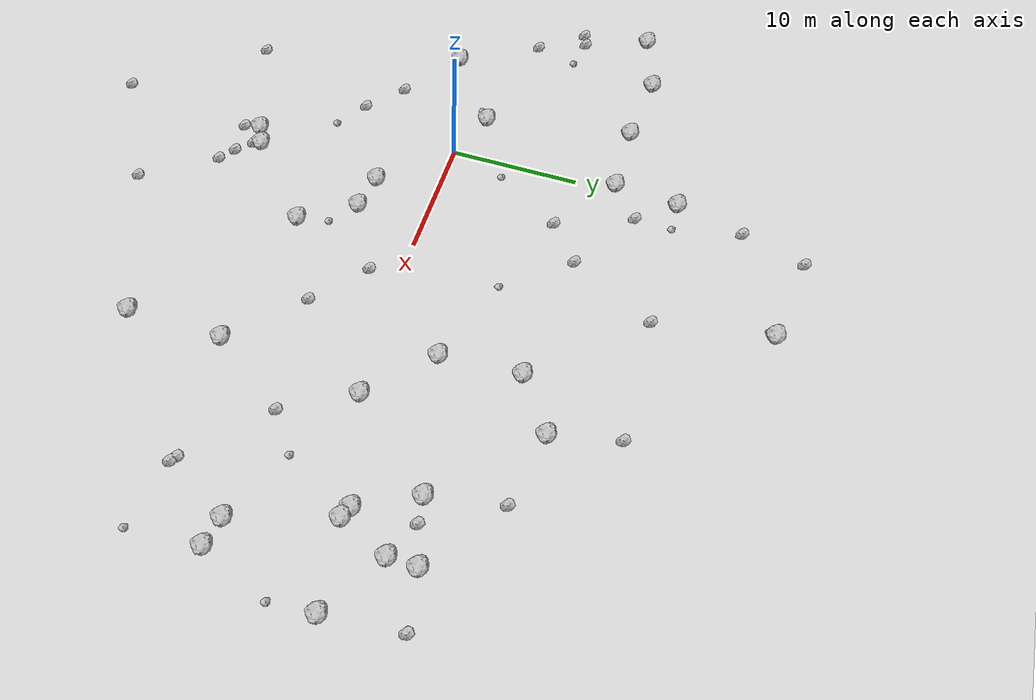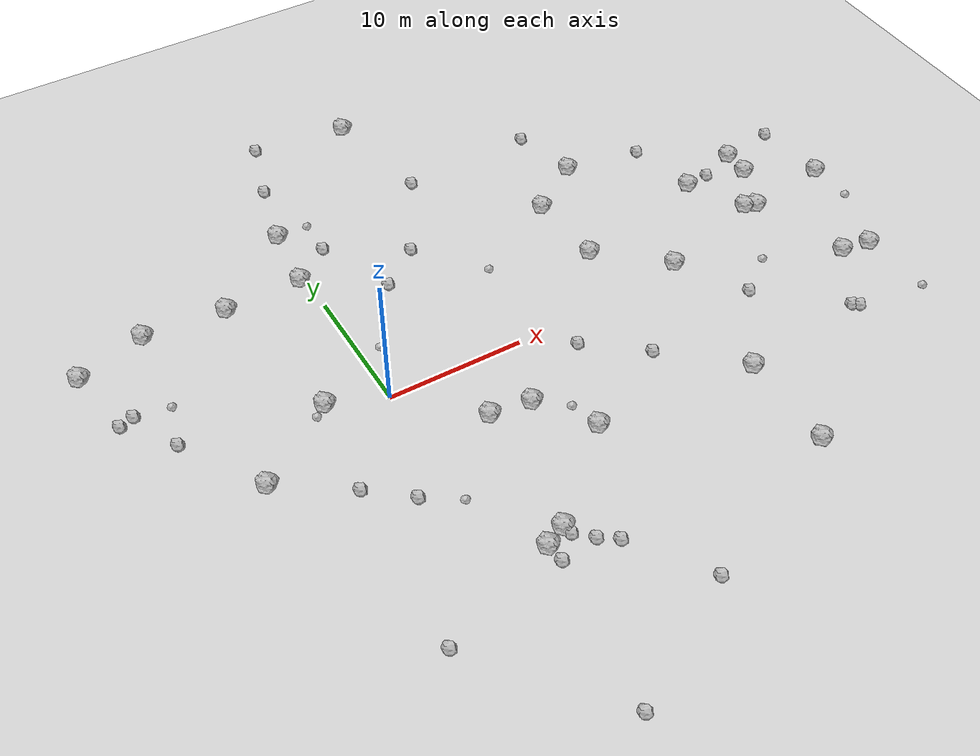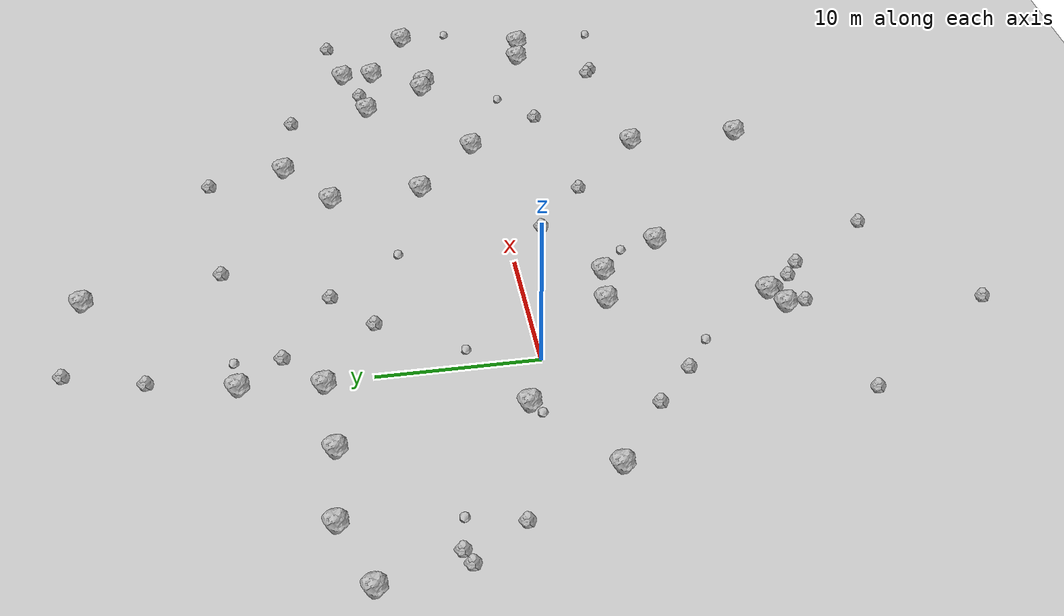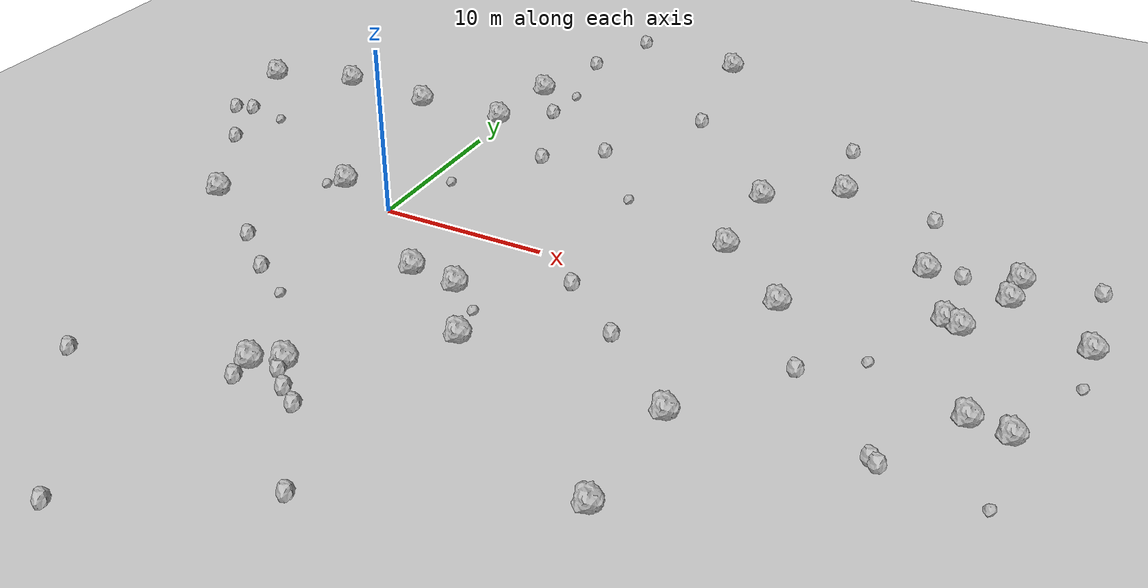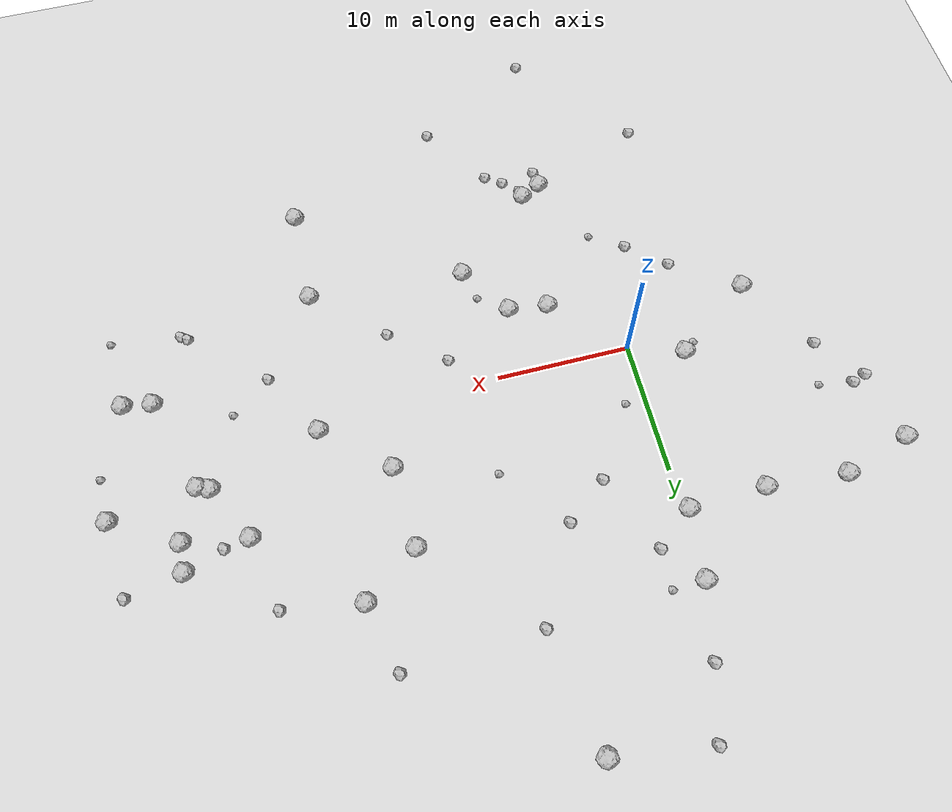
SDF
<sdf version="1.6">
 <world name="default">
  <include><uri>model://custom_ground</uri></include>
  <include><uri>model://sun</uri></include>
  <model name="rock1_0_0">
   <include><uri>model://rock1</uri><pose>39.00782874264638 4.000200810997299 0.5 0 0 0</pose></include>
  </model>
  <model name="rock1_0_1">
   <include><uri>model://rock1</uri><pose>-17.21298650060218 11.812632143164358 0.5 0 0 0</pose></include>
  </model>
  <model name="rock1_0_2">
   <include><uri>model://rock1</uri><pose>37.1797456083829 -4.508111469300815 0.5 0 0 0</pose></include>
  </model>
  <model name="rock1_0_3">
   <include><uri>model://rock1</uri><pose>-4.022800164153924 1.4226489339586799 0.5 0 0 0</pose></include>
  </model>
  <model name="rock1_0_4">
   <include><uri>model://rock1</uri><pose>22.304358731930016 -17.475497171580237 0.5 0 0 0</pose></include>
  </model>
  <model name="rock1_0_5">
   <include><uri>model://rock1</uri><pose>9.875731827637612 27.20153999997479 0.5 0 0 0</pose></include>
  </model>
  <model name="rock1_0_6">
   <include><uri>model://rock1</uri><pose>34.27448514048011 8.854126465477336 0.5 0 0 0</pose></include>
  </model>
  <model name="rock1_0_7">
   <include><uri>model://rock1</uri><pose>35.017381667392186 -4.143441351838046 0.5 0 0 0</pose></include>
  </model>
  <model name="rock1_0_8">
   <include><uri>model://rock1</uri><pose>10.542896415734589 -9.231312079236755 0.5 0 0 0</pose></include>
  </model>
  <model name="rock1_0_9">
   <include><uri>model://rock1</uri><pose>4.204335739118839 -15.002152425424516 0.5 0 0 0</pose></include>
  </model>
  <model name="rock1_0_10">
   <include><uri>model://rock1</uri><pose>-10.050826282383692 -2.8381125024878457 0.5 0 0 0</pose></include>
  </model>
  <model name="rock1_0_11">
   <include><uri>model://rock1</uri><pose>31.791769294671134 3.387831658192887 0.5 0 0 0</pose></include>
  </model>
  <model name="rock1_0_12">
   <include><uri>model://rock1</uri><pose>7.863234645827358 -5.275506037510148 0.5 0 0 0</pose></include>
  </model>
  <model name="rock1_0_13">
   <include><uri>model://rock1</uri><pose>22.695051304192916 13.903614760831758 0.5 0 0 0</pose></include>
  </model>
  <model name="rock1_0_14">
   <include><uri>model://rock1</uri><pose>32.64508349576532 3.0497121105837692 0.5 0 0 0</pose></include>
  </model>
  <model name="rock1_0_15">
   <include><uri>model://rock1</uri><pose>2.666469860374942 -15.765219007327303 0.5 0 0 0</pose></include>
  </model>
  <model name="rock1_0_16">
   <include><uri>model://rock1</uri><pose>34.23047967826186 6.734056890343247 0.5 0 0 0</pose></include>
  </model>
  <model name="rock1_0_17">
   <include><uri>model://rock1</uri><pose>18.624409449871777 11.065526506576404 0.5 0 0 0</pose></include>
  </model>
  <model name="rock1_0_18">
   <include><uri>model://rock1</uri><pose>-6.143668947695291 12.889030794224809 0.5 0 0 0</pose></include>
  </model>
  <model name="rock1_0_19">
   <include><uri>model://rock1</uri><pose>-12.124062947898448 13.38079681394953 0.5 0 0 0</pose></include>
  </model>
  <model name="rock1_0_20">
   <include><uri>model://rock1</uri><pose>-0.3942462875971451 13.051859913297271 0.5 0 0 0</pose></include>
  </model>
  <model name="rock1_0_21">
   <include><uri>model://rock1</uri><pose>0.14181704432165887 18.069167937783668 0.5 0 0 0</pose></include>
  </model>
  <model name="rock1_0_22">
   <include><uri>model://rock1</uri><pose>22.407912403471123 -10.110646810274186 0.5 0 0 0</pose></include>
  </model>
  <model name="rock1_0_23">
   <include><uri>model://rock1</uri><pose>23.627605341010188 0.8990585939026161 0.5 0 0 0</pose></include>
  </model>
  <model name="rock1_0_24">
   <include><uri>model://rock1</uri><pose>18.980194772403735 5.003210001196784 0.5 0 0 0</pose></include>
  </model>
  <model name="rock1_0_25">
   <include><uri>model://rock1</uri><pose>29.536247102335437 7.55964429712207 0.5 0 0 0</pose></include>
  </model>
  <model name="rock1_0_26">
   <include><uri>model://rock1</uri><pose>4.896204941657427 -4.8788702981881436 0.5 0 0 0</pose></include>
  </model>
  <model name="rock2_0_0">
   <include><uri>model://rock2</uri><pose>-6.009146116089564 -18.959457464373312 0.3 0 0 0</pose></include>
  </model>
  <model name="rock2_0_1">
   <include><uri>model://rock2</uri><pose>-5.241232983919504 -6.090549567524651 0.3 0 0 0</pose></include>
  </model>
  <model name="rock2_0_2">
   <include><uri>model://rock2</uri><pose>1.3119599324578743 23.377046684366114 0.3 0 0 0</pose></include>
  </model>
  <model name="rock2_0_3">
   <include><uri>model://rock2</uri><pose>31.932369752239048 -8.825399779976664 0.3 0 0 0</pose></include>
  </model>
  <model name="rock2_0_4">
   <include><uri>model://rock2</uri><pose>4.322503758589104 -15.60846851313724 0.3 0 0 0</pose></include>
  </model>
  <model name="rock2_0_5">
   <include><uri>model://rock2</uri><pose>5.462342948610612 -16.690291573524725 0.3 0 0 0</pose></include>
  </model>
  <model name="rock2_0_6">
   <include><uri>model://rock2</uri><pose>6.692051148042339 -17.5421284812003 0.3 0 0 0</pose></include>
  </model>
  <model name="rock2_0_7">
   <include><uri>model://rock2</uri><pose>1.32774126318796 -28.02670629251604 0.3 0 0 0</pose></include>
  </model>
  <model name="rock2_0_8">
   <include><uri>model://rock2</uri><pose>38.40056803908574 9.632337669620952 0.3 0 0 0</pose></include>
  </model>
  <model name="rock2_0_9">
   <include><uri>model://rock2</uri><pose>-13.703243226534301 3.1506584168229637 0.3 0 0 0</pose></include>
  </model>
  <model name="rock2_0_10">
   <include><uri>model://rock2</uri><pose>-15.312900786197837 6.8891173916460104 0.3 0 0 0</pose></include>
  </model>
  <model name="rock2_0_11">
   <include><uri>model://rock2</uri><pose>2.7634984590587344 28.26363722420605 0.3 0 0 0</pose></include>
  </model>
  <model name="rock2_0_12">
   <include><uri>model://rock2</uri><pose>28.39429345547437 12.974020109876719 0.3 0 0 0</pose></include>
  </model>
  <model name="rock2_0_13">
   <include><uri>model://rock2</uri><pose>26.549311937706804 -4.043764254899706 0.3 0 0 0</pose></include>
  </model>
  <model name="rock2_0_14">
   <include><uri>model://rock2</uri><pose>2.7702033035819404 -17.052390402370897 0.3 0 0 0</pose></include>
  </model>
  <model name="rock2_0_15">
   <include><uri>model://rock2</uri><pose>7.88554544243549 11.979606047727835 0.3 0 0 0</pose></include>
  </model>
  <model name="rock2_0_16">
   <include><uri>model://rock2</uri><pose>32.37066117506696 -9.143057063482466 0.3 0 0 0</pose></include>
  </model>
  <model name="rock2_0_17">
   <include><uri>model://rock2</uri><pose>11.432849462323013 18.56214435046342 0.3 0 0 0</pose></include>
  </model>
  <model name="rock2_0_18">
   <include><uri>model://rock2</uri><pose>21.440908723428834 18.963564887207077 0.3 0 0 0</pose></include>
  </model>
  <model name="rock2_0_19">
   <include><uri>model://rock2</uri><pose>10.341524668905052 -22.800047261741845 0.3 0 0 0</pose></include>
  </model>
  <model name="rock2_0_20">
   <include><uri>model://rock2</uri><pose>13.273276796178095 -2.2558285275539625 0.3 0 0 0</pose></include>
  </model>
  <model name="rock2_0_21">
   <include><uri>model://rock2</uri><pose>2.376828843323004 15.303560308462949 0.3 0 0 0</pose></include>
  </model>
  <model name="rock2_0_22">
   <include><uri>model://rock2</uri><pose>17.276872743576426 -5.485330139964368 0.3 0 0 0</pose></include>
  </model>
  <model name="rock2_0_23">
   <include><uri>model://rock2</uri><pose>-16.38839166744875 6.509454976840857 0.3 0 0 0</pose></include>
  </model>
  <model name="rock2_0_24">
   <include><uri>model://rock2</uri><pose>-2.4133459496452154 -8.459869591609262 0.3 0 0 0</pose></include>
  </model>
  <model name="rock2_0_25">
   <include><uri>model://rock2</uri><pose>31.431966842224078 7.878367365401715 0.3 0 0 0</pose></include>
  </model>
  <model name="rock2_0_26">
   <include><uri>model://rock2</uri><pose>4.789352397676275 9.544169840015094 0.3 0 0 0</pose></include>
  </model>
  <model name="rock3_0_0">
   <include><uri>model://rock3</uri><pose>-12.809252991426794 6.421757443177782 0.2 0 0 0</pose></include>
  </model>
  <model name="rock3_0_1">
   <include><uri>model://rock3</uri><pose>1.4708153076336181 4.337653654683258 0.2 0 0 0</pose></include>
  </model>
  <model name="rock3_0_2">
   <include><uri>model://rock3</uri><pose>37.57296478796628 -9.86403702332262 0.2 0 0 0</pose></include>
  </model>
  <model name="rock3_0_3">
   <include><uri>model://rock3</uri><pose>11.783350671649668 7.265941744915523 0.2 0 0 0</pose></include>
  </model>
  <model name="rock3_0_4">
   <include><uri>model://rock3</uri><pose>29.434103599192788 -1.8787738374438838 0.2 0 0 0</pose></include>
  </model>
  <model name="rock3_0_5">
   <include><uri>model://rock3</uri><pose>-4.967796242398565 0.7662248818379851 0.2 0 0 0</pose></include>
  </model>
  <model name="rock3_0_6">
   <include><uri>model://rock3</uri><pose>2.458893633795036 18.154451086278215 0.2 0 0 0</pose></include>
  </model>
  <model name="rock3_0_7">
   <include><uri>model://rock3</uri><pose>39.22860538777595 0.6999136554321481 0.2 0 0 0</pose></include>
  </model>
  <model name="rock3_0_8">
   <include><uri>model://rock3</uri><pose>9.91657470493806 -6.889724811017299 0.2 0 0 0</pose></include>
  </model>
  <model name="rock3_0_9">
   <include><uri>model://rock3</uri><pose>0.054692279045244874 -10.107309300087866 0.2 0 0 0</pose></include>
  </model>
 </world>
</sdf>
